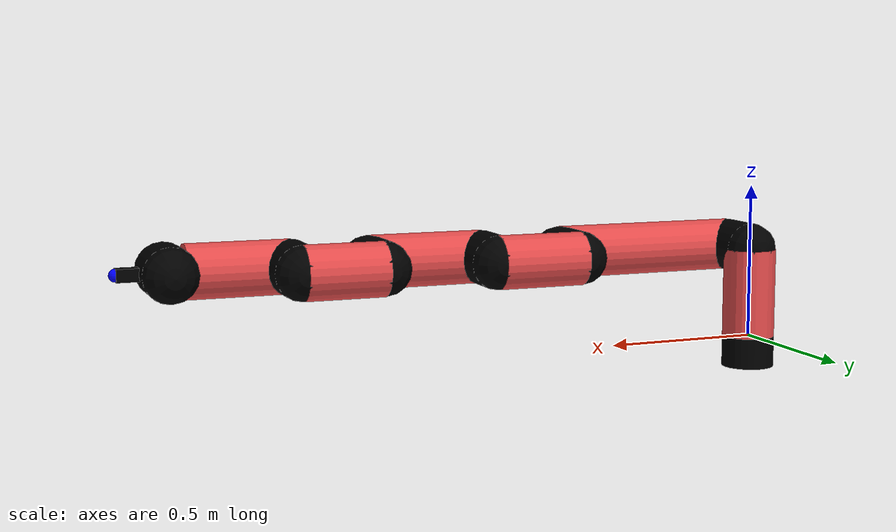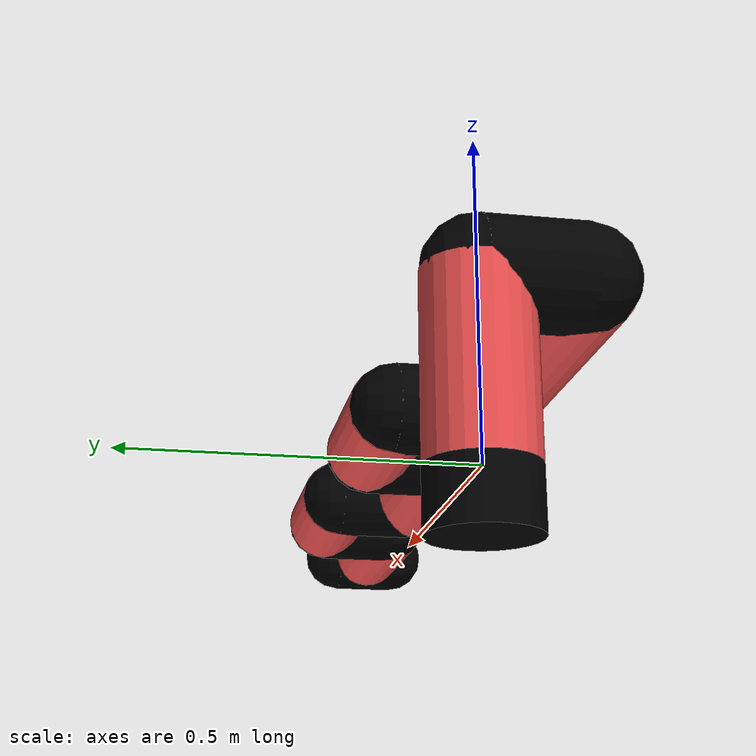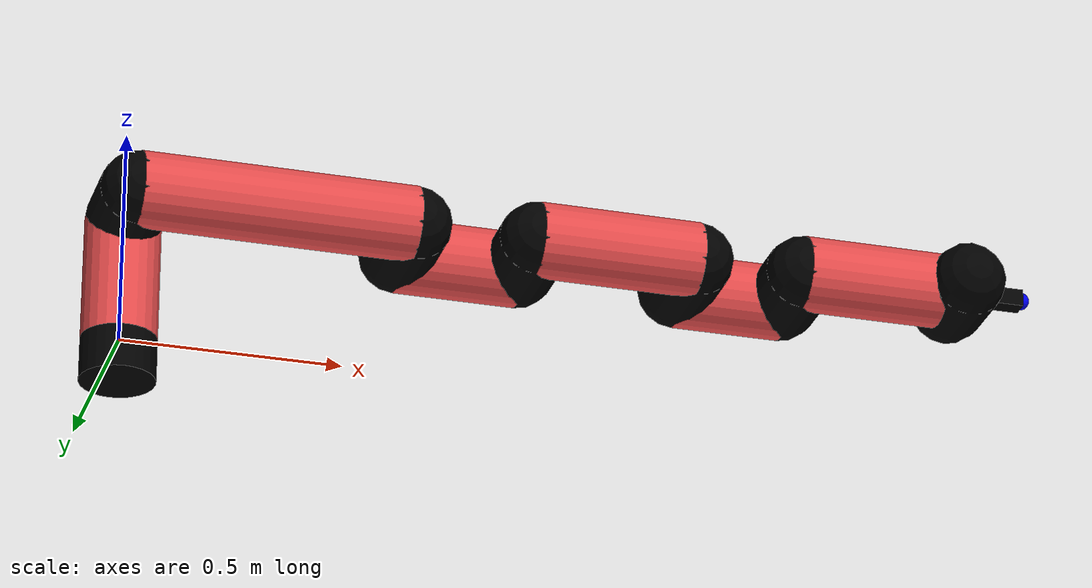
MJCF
<mujoco model="manipulator">
		<compiler angle="degree" coordinate="local" inertiafromgeom="auto" meshdir="meshes/"/>
		<option gravity="0 0 0" integrator="RK4" iterations="30" timestep="0.01"/>

		<default>
		<joint armature="1" limited="true" stiffness="10" damping="15" frictionloss="5.0"/>
		<geom conaffinity="1" condim="3" contype="1" friction=".5 .1 .1" margin="0.002"/>
		<motor ctrllimited="true"/>
		<position ctrllimited="true"/>
		</default>

		<asset>
		<texture builtin="gradient" height="100" rgb1="1.0 1.0 1.0" rgb2="1.0 1.0 1.0" type="skybox" width="100"/>
		<texture builtin="flat" height="32" name="arm_tex" rgb1="0.9 0.3 0.3" type="2d" width="32"/>
		<texture builtin="flat" height="32" name="gripper_tex" rgb1="0.0 0.0 0.0" type="cube" width="32"/>

		<material name="arm_mat" shininess="0.1" specular="0.1" texture="arm_tex"/>
		<material name="gripper_mat" shininess="1" specular="1" texture="gripper_tex"/>
		</asset>

		<worldbody>
		<light cutoff="45" diffuse=".8 .8 .8" dir="0 0.16 -1" directional="false" name="light" pos="0 -2.0 8.0" specular="0.3 0.3 0.3"/>

		<body name="base_link" pos="0 0 -0.1">
		<geom fromto="0 0 0 0 0 0.1" material="arm_mat" name="base_link" rgba="0.0 0.0 0.0 1" size="0.085" type="cylinder"/>
		</body>

		<body name="l1" pos="0 0 0">
<geom fromto="0 0 0 0 0 0.29" material="arm_mat" name="l1" rgba="0.9 0.3 0.3 1" size="0.085" type="cylinder"/>
<geom fromto="0 0 0.29 0 -0.16 0.29" material="arm_mat" name="l1_ex" rgba="0.0 0.0 0.0 1" size="0.085" type="capsule"/>
<joint axis="0 0 1" name="j1" pos="0 0 0" range="-90 90" damping="27.66" frictionloss="10.29"/>

<body name="l2" pos="0 -0.16 0.29">
<geom fromto="0 0 0 0.62 0 0" material="arm_mat" name="l2" rgba="0.9 0.3 0.3 1" size="0.085" type="cylinder"/>
<geom fromto="0.62 0 0 0.62 0.16 0" material="arm_mat" name="l2_ex" rgba="0.0 0.0 0.0 1" size="0.085" type="capsule"/>
<joint axis="0.0 1.0 0.0" name="j2" pos="0 0 0" range="-90 60" damping="26.61" frictionloss="12.1"/>

<body name="l3" pos="0.62 0.16 0">
<geom fromto="0 0 0 0.28 0 0" material="arm_mat" name="l3" rgba="0.9 0.3 0.3 1" size="0.085" type="cylinder"/>
<geom fromto="0.28 0 0 0.28 -0.16 0" material="arm_mat" name="l3_ex" rgba="0.0 0.0 0.0 1" size="0.085" type="capsule"/>
<joint axis="0.0 1.0 0.0" name="j3" pos="0 0 0" range="-30 60" damping="34.75" frictionloss="11.98"/>

<body name="l4" pos="0.28 -0.16 0">
<geom fromto="0 0 0 0.37 0 0" material="arm_mat" name="l4" rgba="0.9 0.3 0.3 1" size="0.085" type="cylinder"/>
<geom fromto="0.37 0 0 0.37 0.16 0" material="arm_mat" name="l4_ex" rgba="0.0 0.0 0.0 1" size="0.085" type="capsule"/>
<joint axis="0.0 1.0 0.0" name="j4" pos="0 0 0" range="-30 60" damping="28.26" frictionloss="9.19"/>

<body name="l5" pos="0.37 0.16 0">
<geom fromto="0 0 0 0.25 0 0" material="arm_mat" name="l5" rgba="0.9 0.3 0.3 1" size="0.085" type="cylinder"/>
<geom fromto="0.25 0 0 0.25 -0.16 0" material="arm_mat" name="l5_ex" rgba="0.0 0.0 0.0 1" size="0.085" type="capsule"/>
<joint axis="0.0 1.0 0.0" name="j5" pos="0 0 0" range="-30 60" damping="22.91" frictionloss="12.34"/>

<body name="l6" pos="0.25 -0.16 0">
<geom fromto="0 0 0 0.32 0 0" material="arm_mat" name="l6" rgba="0.9 0.3 0.3 1" size="0.085" type="cylinder"/>
<joint axis="0.0 1.0 0.0" name="j6" pos="0 0 0" range="-30 60" damping="31.03" frictionloss="9.6"/>

<body name="gripper" pos="0.32 0 0">
<geom fromto="0.05 -0.07 0 0.05 0.07 0" material="gripper_mat" name="gripper" rgba="0.0 0.0 0.0 1" size="0.085" type="capsule"/><joint axis="1 0 0" name="j7" pos="0 0 0" range="-90 90" damping="15" frictionloss="5.0"/><body name="finger" pos="0.1 0 0">
<geom fromto="0 0.0 0 0.1 0.0 0" material="gripper_mat" name="finger" rgba="0.0 0.0 0.0 1" size="0.020 0.06 0.06" type="box"/>
</body>
<site name="current" pos="0.2 0. 0.0" rgba="0. 0. 1.0 1" size="0.02" type="sphere"/>
</body>
</body>
</body>
</body>
</body>
</body>
</body>
</worldbody>
<actuator>
<motor ctrllimited="true" ctrlrange="-1.0 1.0" joint="j1" gear="68.5"/>
<motor ctrllimited="true" ctrlrange="-1.0 1.0" joint="j2" gear="99.39"/>
<motor ctrllimited="true" ctrlrange="-1.0 1.0" joint="j3" gear="61.43"/>
<motor ctrllimited="true" ctrlrange="-1.0 1.0" joint="j4" gear="92.14"/>
<motor ctrllimited="true" ctrlrange="-1.0 1.0" joint="j5" gear="60.71"/>
<motor ctrllimited="true" ctrlrange="-1.0 1.0" joint="j6" gear="93.05"/>
<motor ctrllimited="true" ctrlrange="-1.0 1.0" joint="j7" gear="80"/>
</actuator>
</mujoco>
